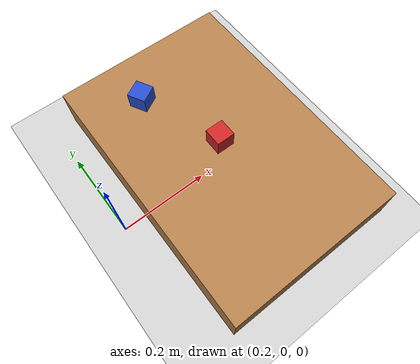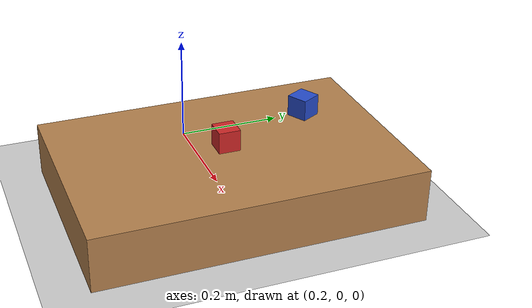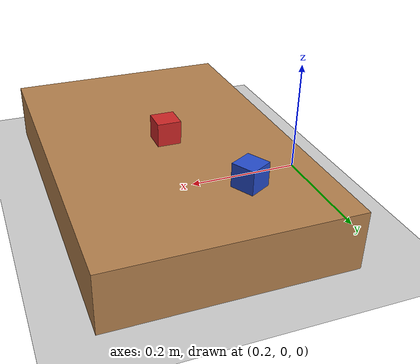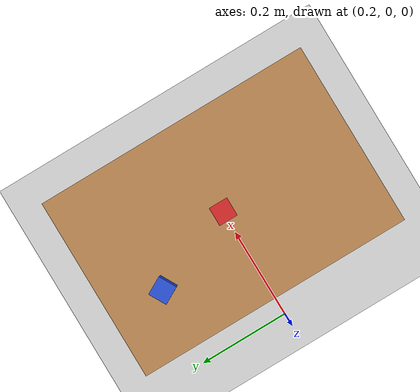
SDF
<?xml version="1.0"?>
<!-- OMY 앞에 낮은 테이블과 색깔 큐브 (D405 포인트클라우드 / 집기 테스트용) -->
<sdf version="1.6">
  <world name="default">
    <include>
      <uri>model://ground_plane</uri>
    </include>
    <include>
      <uri>model://sun</uri>
    </include>

    <physics type="ode">
      <real_time_update_rate>1000.0</real_time_update_rate>
      <max_step_size>0.001</max_step_size>
      <real_time_factor>1</real_time_factor>
    </physics>

    <!-- 테이블 윗면 높이 0.10 m, 로봇 앞 0.25 ~ 0.65 m -->
    <model name="table">
      <static>true</static>
      <pose>0.45 0 0.05 0 0 0</pose>
      <link name="link">
        <collision name="collision">
          <geometry><box><size>0.4 0.6 0.1</size></box></geometry>
        </collision>
        <visual name="visual">
          <geometry><box><size>0.4 0.6 0.1</size></box></geometry>
          <material>
            <script><uri>file://media/materials/scripts/gazebo.material</uri><name>Gazebo/Wood</name></script>
          </material>
        </visual>
      </link>
    </model>

    <model name="red_cube">
      <pose>0.45 0.0 0.12 0 0 0</pose>
      <link name="link">
        <inertial>
          <mass>0.05</mass>
          <inertia><ixx>1.33e-05</ixx><iyy>1.33e-05</iyy><izz>1.33e-05</izz></inertia>
        </inertial>
        <collision name="collision">
          <geometry><box><size>0.04 0.04 0.04</size></box></geometry>
          <surface><friction><ode><mu>1.0</mu><mu2>1.0</mu2></ode></friction></surface>
        </collision>
        <visual name="visual">
          <geometry><box><size>0.04 0.04 0.04</size></box></geometry>
          <material>
            <script><uri>file://media/materials/scripts/gazebo.material</uri><name>Gazebo/Red</name></script>
          </material>
        </visual>
      </link>
    </model>

    <model name="blue_cube">
      <pose>0.38 0.18 0.12 0 0 0.5</pose>
      <link name="link">
        <inertial>
          <mass>0.05</mass>
          <inertia><ixx>1.33e-05</ixx><iyy>1.33e-05</iyy><izz>1.33e-05</izz></inertia>
        </inertial>
        <collision name="collision">
          <geometry><box><size>0.04 0.04 0.04</size></box></geometry>
          <surface><friction><ode><mu>1.0</mu><mu2>1.0</mu2></ode></friction></surface>
        </collision>
        <visual name="visual">
          <geometry><box><size>0.04 0.04 0.04</size></box></geometry>
          <material>
            <script><uri>file://media/materials/scripts/gazebo.material</uri><name>Gazebo/Blue</name></script>
          </material>
        </visual>
      </link>
    </model>
  </world>
</sdf>
